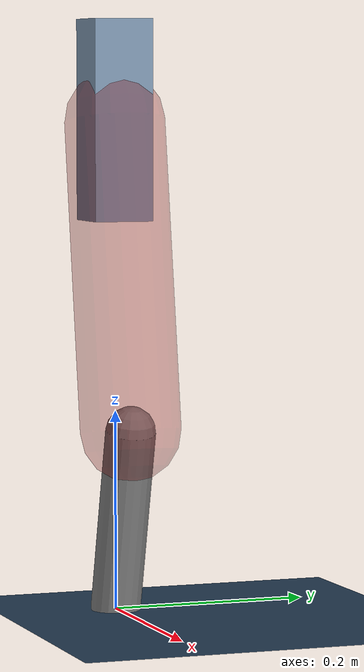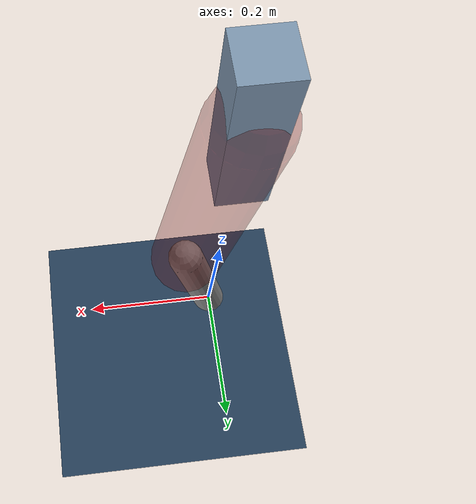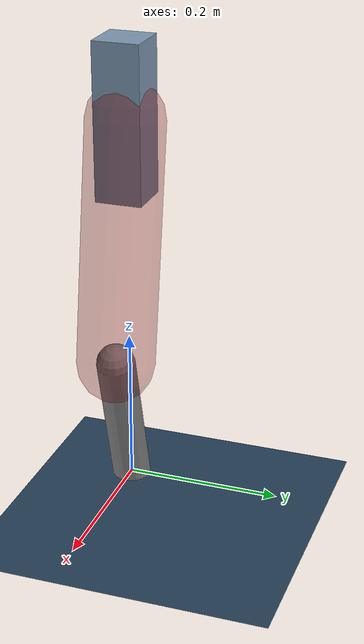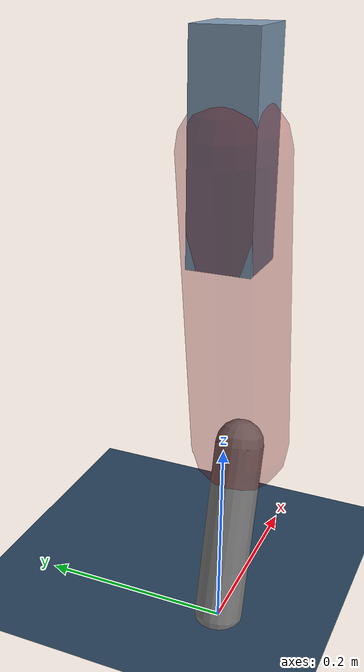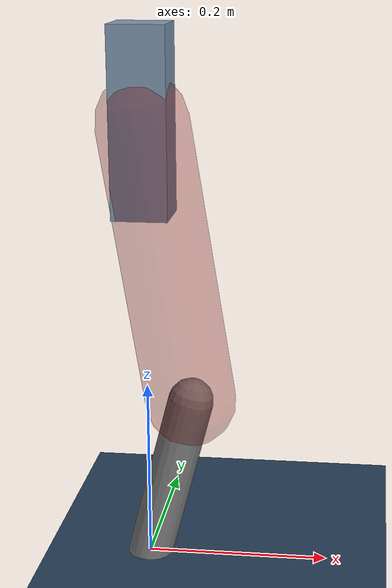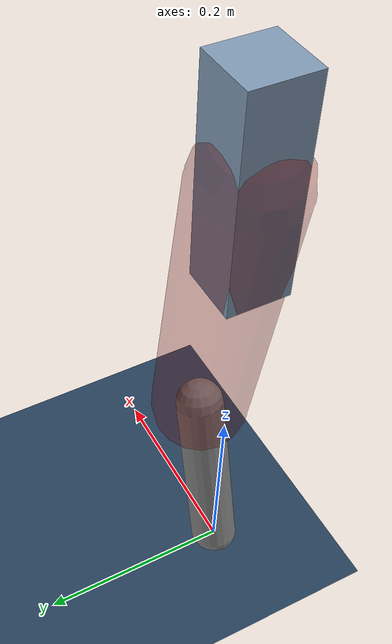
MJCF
<mujoco model="Hopper2D">
	<compiler inertiafromgeom="true" angle="radian" />
	<option timestep="0.001" integrator="implicit" cone="elliptic" solver="Newton" tolerance="1e-10" />

	<default>
		<geom contype="1" conaffinity="1" condim="3" friction="2 0.005 0.0001" solref="0.005 1" />
		<joint limited="true" damping="0.1" />
	</default>

	<asset>
		<texture name="skybox" type="skybox" builtin="gradient" rgb1=".4 .6 .8" rgb2="0 0 0" width="800" height="800" />
		<texture name="grid" type="2d" builtin="checker" rgb1=".1 .2 .3" rgb2=".2 .3 .4" width="300" height="300" mark="edge" markrgb=".2 .3 .4" />
		<material name="ground" texture="grid" texrepeat="1 1" texuniform="true" reflectance="0.1" />
		<material name="leg" rgba="0.5 0.6 0.7 1" />
	</asset>

	<worldbody>

		<geom name="floor" type="plane" size="5 5 0.25" material="ground" />

		<light directional="false" diffuse="0.8 0.8 0.8" specular="0.3 0.3 0.3" pos="0 0 2" dir="0 0 -1" />
		<light mode="targetbodycom" target="base" directional="false" diffuse="0.8 0.8 0.8" specular="0.3 0.3 0.3" pos="0 0 2" dir="0 0 -1" />

		<camera name="fixed" pos="0 -2 1" xyaxes="1 0 0 0 0 1" />
		<camera name="tracking" mode="trackcom" pos="0 -3 1" />

		<body name="root" pos="0 0 0.49042722808078687">
			<joint name="slide_x" type="slide" axis="1 0 0" range="-100 100" />
			<joint name="slide_z" type="slide" axis="0 0 1" range="0 10" />

			<body name="base" pos="0 0 0">
				<geom name="torso" type="box" size="0.03 0.03 0.1" mass="3.059" material="leg" />

				<body name="link1" pos="0 0 0" euler="0 1.414406510165766 0">
					<joint type="hinge" axis="0 -1 0" pos="0 0 0" name="hinge1" limited="true" range="-3.14 3.14" stiffness="0" damping="0.1" />
					<geom name="thigh" type="capsule" fromto="0 0 0 0.3099293656250047 0 0" size="0.05" rgba="0.5 0 0 0.3" mass="1.0157092871875129" />

					<body name="link2" pos="0.3099293656250047 0 0" euler="0 0.4125848190662906 0">
						<joint type="hinge" axis="0 -1 0" pos="0 0 0" name="hinge2" limited="true" range="-3.14 3.14" stiffness="0" damping="0.1" />
						<geom name="shank" type="capsule" fromto="0 0 0 0.1904978624557822 0 0" size="0.025" mass="0.392848076210204" />

					</body>
				</body>
			</body>
		</body>
	</worldbody>

	<actuator>
		<motor name="torque1" joint="hinge1" ctrlrange="-197.28103231704864 197.28103231704864" ctrllimited="true" gear="1" />
		<motor name="torque2" joint="hinge2" ctrlrange="-53.23381886412726 53.23381886412726" ctrllimited="true" gear="1" />
	</actuator>
</mujoco>
